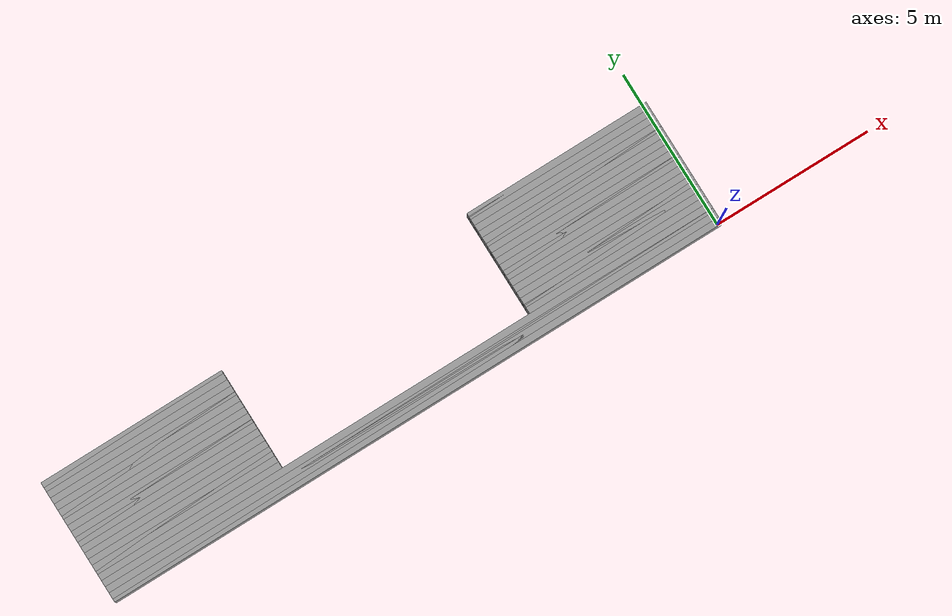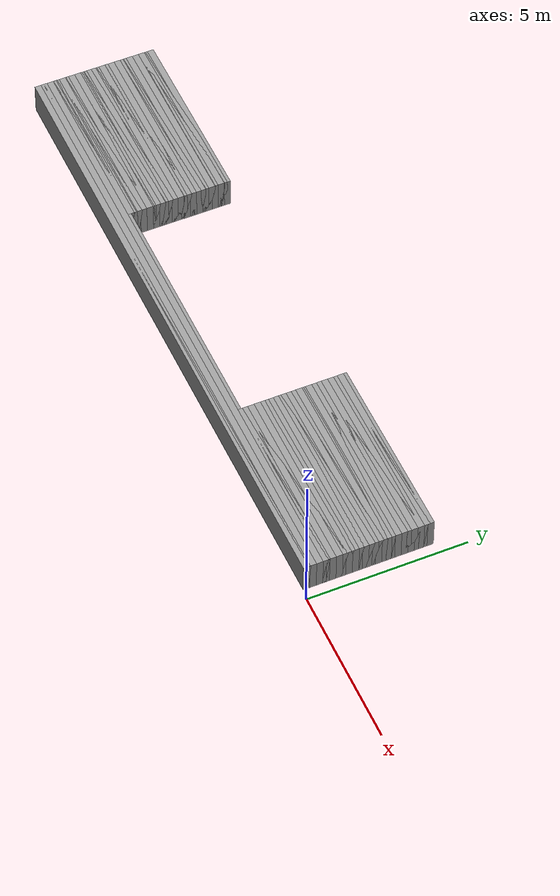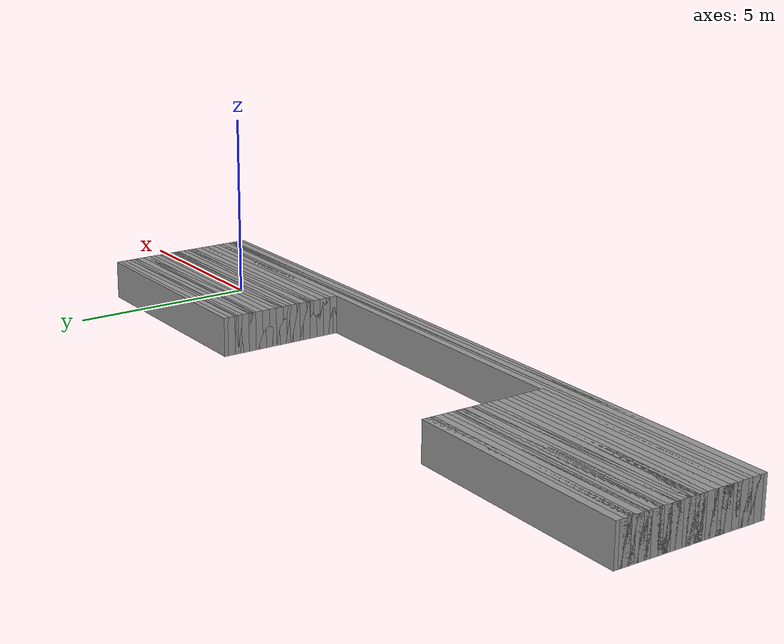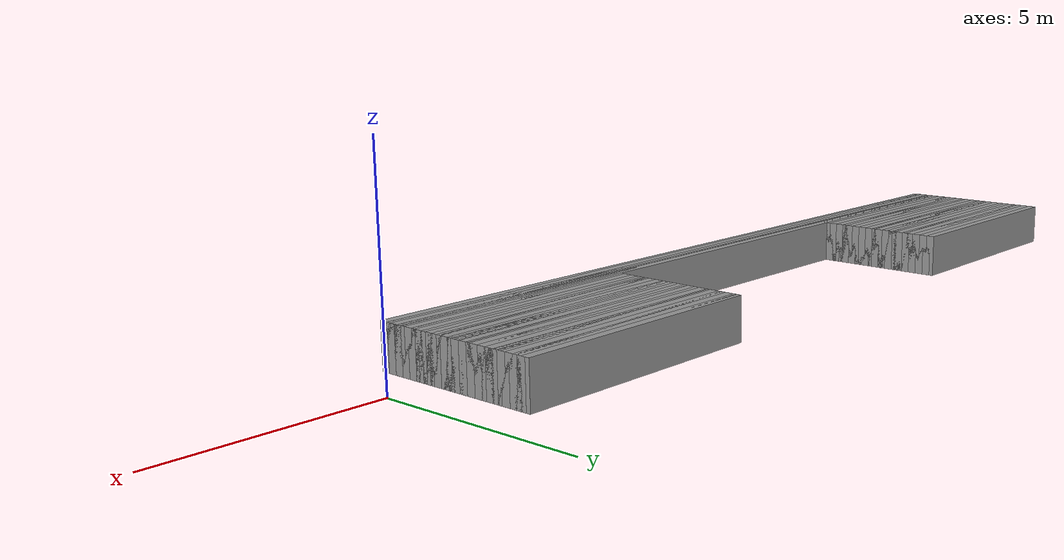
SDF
<sdf version="1.6">
 <world name="GridMap">
  <model name="GridMap">
   <link name="Wall_(99.5,0.0)">
    <collision name="Wall_(99.5,0.0)_Collision">
     <geometry><box><size>19.9 0.2 1.0</size></box></geometry>
     <pose>-9.95 0.0 0.5 0 -0 0</pose>
    </collision>
    <visual name="Wall_(99.5,0.0)_Visual">
     <geometry><box><size>19.9 0.2 1.0</size></box></geometry>
     <pose>-9.95 0.0 0.5 0 -0 0</pose>
     <material>
      <script><uri>file://media/materials/scripts/gazebo.material</uri><name>Gazebo/Grey</name></script>
      <ambient>1 1 1 1</ambient>
     </material>
     <meta><layer>0</layer></meta>
    </visual>
    <pose>0 0 0.5 0 -0 0</pose>
   </link>
   <link name="Wall_(99.5,1.0)">
    <collision name="Wall_(99.5,1.0)_Collision">
     <geometry><box><size>19.9 0.2 1.0</size></box></geometry>
     <pose>-9.95 0.1 0.5 0 -0 0</pose>
    </collision>
    <visual name="Wall_(99.5,1.0)_Visual">
     <geometry><box><size>19.9 0.2 1.0</size></box></geometry>
     <pose>-9.95 0.1 0.5 0 -0 0</pose>
     <material>
      <script><uri>file://media/materials/scripts/gazebo.material</uri><name>Gazebo/Grey</name></script>
      <ambient>1 1 1 1</ambient>
     </material>
     <meta><layer>0</layer></meta>
    </visual>
    <pose>0 0 0.5 0 -0 0</pose>
   </link>
   <link name="Wall_(99.5,2.0)">
    <collision name="Wall_(99.5,2.0)_Collision">
     <geometry><box><size>19.9 0.2 1.0</size></box></geometry>
     <pose>-9.95 0.2 0.5 0 -0 0</pose>
    </collision>
    <visual name="Wall_(99.5,2.0)_Visual">
     <geometry><box><size>19.9 0.2 1.0</size></box></geometry>
     <pose>-9.95 0.2 0.5 0 -0 0</pose>
     <material>
      <script><uri>file://media/materials/scripts/gazebo.material</uri><name>Gazebo/Grey</name></script>
      <ambient>1 1 1 1</ambient>
     </material>
     <meta><layer>0</layer></meta>
    </visual>
    <pose>0 0 0.5 0 -0 0</pose>
   </link>
   <link name="Wall_(99.5,3.0)">
    <collision name="Wall_(99.5,3.0)_Collision">
     <geometry><box><size>19.9 0.2 1.0</size></box></geometry>
     <pose>-9.95 0.3 0.5 0 -0 0</pose>
    </collision>
    <visual name="Wall_(99.5,3.0)_Visual">
     <geometry><box><size>19.9 0.2 1.0</size></box></geometry>
     <pose>-9.95 0.3 0.5 0 -0 0</pose>
     <material>
      <script><uri>file://media/materials/scripts/gazebo.material</uri><name>Gazebo/Grey</name></script>
      <ambient>1 1 1 1</ambient>
     </material>
     <meta><layer>0</layer></meta>
    </visual>
    <pose>0 0 0.5 0 -0 0</pose>
   </link>
   <link name="Wall_(99.5,4.0)">
    <collision name="Wall_(99.5,4.0)_Collision">
     <geometry><box><size>19.9 0.2 1.0</size></box></geometry>
     <pose>-9.95 0.4 0.5 0 -0 0</pose>
    </collision>
    <visual name="Wall_(99.5,4.0)_Visual">
     <geometry><box><size>19.9 0.2 1.0</size></box></geometry>
     <pose>-9.95 0.4 0.5 0 -0 0</pose>
     <material>
      <script><uri>file://media/materials/scripts/gazebo.material</uri><name>Gazebo/Grey</name></script>
      <ambient>1 1 1 1</ambient>
     </material>
     <meta><layer>0</layer></meta>
    </visual>
    <pose>0 0 0.5 0 -0 0</pose>
   </link>
   <link name="Wall_(99.5,5.0)">
    <collision name="Wall_(99.5,5.0)_Collision">
     <geometry><box><size>19.9 0.2 1.0</size></box></geometry>
     <pose>-9.95 0.5 0.5 0 -0 0</pose>
    </collision>
    <visual name="Wall_(99.5,5.0)_Visual">
     <geometry><box><size>19.9 0.2 1.0</size></box></geometry>
     <pose>-9.95 0.5 0.5 0 -0 0</pose>
     <material>
      <script><uri>file://media/materials/scripts/gazebo.material</uri><name>Gazebo/Grey</name></script>
      <ambient>1 1 1 1</ambient>
     </material>
     <meta><layer>0</layer></meta>
    </visual>
    <pose>0 0 0.5 0 -0 0</pose>
   </link>
   <link name="Wall_(29.5,6.0)">
    <collision name="Wall_(29.5,6.0)_Collision">
     <geometry><box><size>5.9 0.2 1.0</size></box></geometry>
     <pose>-2.95 0.6 0.5 0 -0 0</pose>
    </collision>
    <visual name="Wall_(29.5,6.0)_Visual">
     <geometry><box><size>5.9 0.2 1.0</size></box></geometry>
     <pose>-2.95 0.6 0.5 0 -0 0</pose>
     <material>
      <script><uri>file://media/materials/scripts/gazebo.material</uri><name>Gazebo/Grey</name></script>
      <ambient>1 1 1 1</ambient>
     </material>
     <meta><layer>0</layer></meta>
    </visual>
    <pose>0 0 0.5 0 -0 0</pose>
   </link>
   <link name="Wall_(169.5,6.0)">
    <collision name="Wall_(169.5,6.0)_Collision">
     <geometry><box><size>5.9 0.2 1.0</size></box></geometry>
     <pose>-16.95 0.6 0.5 0 -0 0</pose>
    </collision>
    <visual name="Wall_(169.5,6.0)_Visual">
     <geometry><box><size>5.9 0.2 1.0</size></box></geometry>
     <pose>-16.95 0.6 0.5 0 -0 0</pose>
     <material>
      <script><uri>file://media/materials/scripts/gazebo.material</uri><name>Gazebo/Grey</name></script>
      <ambient>1 1 1 1</ambient>
     </material>
     <meta><layer>0</layer></meta>
    </visual>
    <pose>0 0 0.5 0 -0 0</pose>
   </link>
   <link name="Wall_(29.5,7.0)">
    <collision name="Wall_(29.5,7.0)_Collision">
     <geometry><box><size>5.9 0.2 1.0</size></box></geometry>
     <pose>-2.95 0.7 0.5 0 -0 0</pose>
    </collision>
    <visual name="Wall_(29.5,7.0)_Visual">
     <geometry><box><size>5.9 0.2 1.0</size></box></geometry>
     <pose>-2.95 0.7 0.5 0 -0 0</pose>
     <material>
      <script><uri>file://media/materials/scripts/gazebo.material</uri><name>Gazebo/Grey</name></script>
      <ambient>1 1 1 1</ambient>
     </material>
     <meta><layer>0</layer></meta>
    </visual>
    <pose>0 0 0.5 0 -0 0</pose>
   </link>
   <link name="Wall_(169.5,7.0)">
    <collision name="Wall_(169.5,7.0)_Collision">
     <geometry><box><size>5.9 0.2 1.0</size></box></geometry>
     <pose>-16.95 0.7 0.5 0 -0 0</pose>
    </collision>
    <visual name="Wall_(169.5,7.0)_Visual">
     <geometry><box><size>5.9 0.2 1.0</size></box></geometry>
     <pose>-16.95 0.7 0.5 0 -0 0</pose>
     <material>
      <script><uri>file://media/materials/scripts/gazebo.material</uri><name>Gazebo/Grey</name></script>
      <ambient>1 1 1 1</ambient>
     </material>
     <meta><layer>0</layer></meta>
    </visual>
    <pose>0 0 0.5 0 -0 0</pose>
   </link>
   <link name="Wall_(29.5,8.0)">
    <collision name="Wall_(29.5,8.0)_Collision">
     <geometry><box><size>5.9 0.2 1.0</size></box></geometry>
     <pose>-2.95 0.8 0.5 0 -0 0</pose>
    </collision>
    <visual name="Wall_(29.5,8.0)_Visual">
     <geometry><box><size>5.9 0.2 1.0</size></box></geometry>
     <pose>-2.95 0.8 0.5 0 -0 0</pose>
     <material>
      <script><uri>file://media/materials/scripts/gazebo.material</uri><name>Gazebo/Grey</name></script>
      <ambient>1 1 1 1</ambient>
     </material>
     <meta><layer>0</layer></meta>
    </visual>
    <pose>0 0 0.5 0 -0 0</pose>
   </link>
   <link name="Wall_(169.5,8.0)">
    <collision name="Wall_(169.5,8.0)_Collision">
     <geometry><box><size>5.9 0.2 1.0</size></box></geometry>
     <pose>-16.95 0.8 0.5 0 -0 0</pose>
    </collision>
    <visual name="Wall_(169.5,8.0)_Visual">
     <geometry><box><size>5.9 0.2 1.0</size></box></geometry>
     <pose>-16.95 0.8 0.5 0 -0 0</pose>
     <material>
      <script><uri>file://media/materials/scripts/gazebo.material</uri><name>Gazebo/Grey</name></script>
      <ambient>1 1 1 1</ambient>
     </material>
     <meta><layer>0</layer></meta>
    </visual>
    <pose>0 0 0.5 0 -0 0</pose>
   </link>
   <link name="Wall_(29.5,9.0)">
    <collision name="Wall_(29.5,9.0)_Collision">
     <geometry><box><size>5.9 0.2 1.0</size></box></geometry>
     <pose>-2.95 0.9 0.5 0 -0 0</pose>
    </collision>
    <visual name="Wall_(29.5,9.0)_Visual">
     <geometry><box><size>5.9 0.2 1.0</size></box></geometry>
     <pose>-2.95 0.9 0.5 0 -0 0</pose>
     <material>
      <script><uri>file://media/materials/scripts/gazebo.material</uri><name>Gazebo/Grey</name></script>
      <ambient>1 1 1 1</ambient>
     </material>
     <meta><layer>0</layer></meta>
    </visual>
    <pose>0 0 0.5 0 -0 0</pose>
   </link>
   <link name="Wall_(169.5,9.0)">
    <collision name="Wall_(169.5,9.0)_Collision">
     <geometry><box><size>5.9 0.2 1.0</size></box></geometry>
     <pose>-16.95 0.9 0.5 0 -0 0</pose>
    </collision>
    <visual name="Wall_(169.5,9.0)_Visual">
     <geometry><box><size>5.9 0.2 1.0</size></box></geometry>
     <pose>-16.95 0.9 0.5 0 -0 0</pose>
     <material>
      <script><uri>file://media/materials/scripts/gazebo.material</uri><name>Gazebo/Grey</name></script>
      <ambient>1 1 1 1</ambient>
     </material>
     <meta><layer>0</layer></meta>
    </visual>
    <pose>0 0 0.5 0 -0 0</pose>
   </link>
   <link name="Wall_(29.5,10.0)">
    <collision name="Wall_(29.5,10.0)_Collision">
     <geometry><box><size>5.9 0.2 1.0</size></box></geometry>
     <pose>-2.95 1.0 0.5 0 -0 0</pose>
    </collision>
    <visual name="Wall_(29.5,10.0)_Visual">
     <geometry><box><size>5.9 0.2 1.0</size></box></geometry>
     <pose>-2.95 1.0 0.5 0 -0 0</pose>
     <material>
      <script><uri>file://media/materials/scripts/gazebo.material</uri><name>Gazebo/Grey</name></script>
      <ambient>1 1 1 1</ambient>
     </material>
     <meta><layer>0</layer></meta>
    </visual>
    <pose>0 0 0.5 0 -0 0</pose>
   </link>
   <link name="Wall_(169.5,10.0)">
    <collision name="Wall_(169.5,10.0)_Collision">
     <geometry><box><size>5.9 0.2 1.0</size></box></geometry>
     <pose>-16.95 1.0 0.5 0 -0 0</pose>
    </collision>
    <visual name="Wall_(169.5,10.0)_Visual">
     <geometry><box><size>5.9 0.2 1.0</size></box></geometry>
     <pose>-16.95 1.0 0.5 0 -0 0</pose>
     <material>
      <script><uri>file://media/materials/scripts/gazebo.material</uri><name>Gazebo/Grey</name></script>
      <ambient>1 1 1 1</ambient>
     </material>
     <meta><layer>0</layer></meta>
    </visual>
    <pose>0 0 0.5 0 -0 0</pose>
   </link>
   <link name="Wall_(29.5,11.0)">
    <collision name="Wall_(29.5,11.0)_Collision">
     <geometry><box><size>5.9 0.2 1.0</size></box></geometry>
     <pose>-2.95 1.1 0.5 0 -0 0</pose>
    </collision>
    <visual name="Wall_(29.5,11.0)_Visual">
     <geometry><box><size>5.9 0.2 1.0</size></box></geometry>
     <pose>-2.95 1.1 0.5 0 -0 0</pose>
     <material>
      <script><uri>file://media/materials/scripts/gazebo.material</uri><name>Gazebo/Grey</name></script>
      <ambient>1 1 1 1</ambient>
     </material>
     <meta><layer>0</layer></meta>
    </visual>
    <pose>0 0 0.5 0 -0 0</pose>
   </link>
   <link name="Wall_(169.5,11.0)">
    <collision name="Wall_(169.5,11.0)_Collision">
     <geometry><box><size>5.9 0.2 1.0</size></box></geometry>
     <pose>-16.95 1.1 0.5 0 -0 0</pose>
    </collision>
    <visual name="Wall_(169.5,11.0)_Visual">
     <geometry><box><size>5.9 0.2 1.0</size></box></geometry>
     <pose>-16.95 1.1 0.5 0 -0 0</pose>
     <material>
      <script><uri>file://media/materials/scripts/gazebo.material</uri><name>Gazebo/Grey</name></script>
      <ambient>1 1 1 1</ambient>
     </material>
     <meta><layer>0</layer></meta>
    </visual>
    <pose>0 0 0.5 0 -0 0</pose>
   </link>
   <link name="Wall_(29.5,12.0)">
    <collision name="Wall_(29.5,12.0)_Collision">
     <geometry><box><size>5.9 0.2 1.0</size></box></geometry>
     <pose>-2.95 1.2 0.5 0 -0 0</pose>
    </collision>
    <visual name="Wall_(29.5,12.0)_Visual">
     <geometry><box><size>5.9 0.2 1.0</size></box></geometry>
     <pose>-2.95 1.2 0.5 0 -0 0</pose>
     <material>
      <script><uri>file://media/materials/scripts/gazebo.material</uri><name>Gazebo/Grey</name></script>
      <ambient>1 1 1 1</ambient>
     </material>
     <meta><layer>0</layer></meta>
    </visual>
    <pose>0 0 0.5 0 -0 0</pose>
   </link>
   <link name="Wall_(169.5,12.0)">
    <collision name="Wall_(169.5,12.0)_Collision">
     <geometry><box><size>5.9 0.2 1.0</size></box></geometry>
     <pose>-16.95 1.2 0.5 0 -0 0</pose>
    </collision>
    <visual name="Wall_(169.5,12.0)_Visual">
     <geometry><box><size>5.9 0.2 1.0</size></box></geometry>
     <pose>-16.95 1.2 0.5 0 -0 0</pose>
     <material>
      <script><uri>file://media/materials/scripts/gazebo.material</uri><name>Gazebo/Grey</name></script>
      <ambient>1 1 1 1</ambient>
     </material>
     <meta><layer>0</layer></meta>
    </visual>
    <pose>0 0 0.5 0 -0 0</pose>
   </link>
   <link name="Wall_(29.5,13.0)">
    <collision name="Wall_(29.5,13.0)_Collision">
     <geometry><box><size>5.9 0.2 1.0</size></box></geometry>
     <pose>-2.95 1.3 0.5 0 -0 0</pose>
    </collision>
    <visual name="Wall_(29.5,13.0)_Visual">
     <geometry><box><size>5.9 0.2 1.0</size></box></geometry>
     <pose>-2.95 1.3 0.5 0 -0 0</pose>
     <material>
      <script><uri>file://media/materials/scripts/gazebo.material</uri><name>Gazebo/Grey</name></script>
      <ambient>1 1 1 1</ambient>
     </material>
     <meta><layer>0</layer></meta>
    </visual>
    <pose>0 0 0.5 0 -0 0</pose>
   </link>
   <link name="Wall_(169.5,13.0)">
    <collision name="Wall_(169.5,13.0)_Collision">
     <geometry><box><size>5.9 0.2 1.0</size></box></geometry>
     <pose>-16.95 1.3 0.5 0 -0 0</pose>
    </collision>
    <visual name="Wall_(169.5,13.0)_Visual">
     <geometry><box><size>5.9 0.2 1.0</size></box></geometry>
     <pose>-16.95 1.3 0.5 0 -0 0</pose>
     <material>
      <script><uri>file://media/materials/scripts/gazebo.material</uri><name>Gazebo/Grey</name></script>
      <ambient>1 1 1 1</ambient>
     </material>
     <meta><layer>0</layer></meta>
    </visual>
    <pose>0 0 0.5 0 -0 0</pose>
   </link>
   <link name="Wall_(29.5,14.0)">
    <collision name="Wall_(29.5,14.0)_Collision">
     <geometry><box><size>5.9 0.2 1.0</size></box></geometry>
     <pose>-2.95 1.4 0.5 0 -0 0</pose>
    </collision>
    <visual name="Wall_(29.5,14.0)_Visual">
     <geometry><box><size>5.9 0.2 1.0</size></box></geometry>
     <pose>-2.95 1.4 0.5 0 -0 0</pose>
     <material>
      <script><uri>file://media/materials/scripts/gazebo.material</uri><name>Gazebo/Grey</name></script>
      <ambient>1 1 1 1</ambient>
     </material>
     <meta><layer>0</layer></meta>
    </visual>
    <pose>0 0 0.5 0 -0 0</pose>
   </link>
   <link name="Wall_(169.5,14.0)">
    <collision name="Wall_(169.5,14.0)_Collision">
     <geometry><box><size>5.9 0.2 1.0</size></box></geometry>
     <pose>-16.95 1.4 0.5 0 -0 0</pose>
    </collision>
    <visual name="Wall_(169.5,14.0)_Visual">
     <geometry><box><size>5.9 0.2 1.0</size></box></geometry>
     <pose>-16.95 1.4 0.5 0 -0 0</pose>
     <material>
      <script><uri>file://media/materials/scripts/gazebo.material</uri><name>Gazebo/Grey</name></script>
      <ambient>1 1 1 1</ambient>
     </material>
     <meta><layer>0</layer></meta>
    </visual>
    <pose>0 0 0.5 0 -0 0</pose>
   </link>
   <link name="Wall_(29.5,15.0)">
    <collision name="Wall_(29.5,15.0)_Collision">
     <geometry><box><size>5.9 0.2 1.0</size></box></geometry>
     <pose>-2.95 1.5 0.5 0 -0 0</pose>
    </collision>
    <visual name="Wall_(29.5,15.0)_Visual">
     <geometry><box><size>5.9 0.2 1.0</size></box></geometry>
     <pose>-2.95 1.5 0.5 0 -0 0</pose>
     <material>
      <script><uri>file://media/materials/scripts/gazebo.material</uri><name>Gazebo/Grey</name></script>
      <ambient>1 1 1 1</ambient>
     </material>
     <meta><layer>0</layer></meta>
    </visual>
    <pose>0 0 0.5 0 -0 0</pose>
   </link>
   <link name="Wall_(169.5,15.0)">
    <collision name="Wall_(169.5,15.0)_Collision">
     <geometry><box><size>5.9 0.2 1.0</size></box></geometry>
     <pose>-16.95 1.5 0.5 0 -0 0</pose>
    </collision>
    <visual name="Wall_(169.5,15.0)_Visual">
     <geometry><box><size>5.9 0.2 1.0</size></box></geometry>
     <pose>-16.95 1.5 0.5 0 -0 0</pose>
     <material>
      <script><uri>file://media/materials/scripts/gazebo.material</uri><name>Gazebo/Grey</name></script>
      <ambient>1 1 1 1</ambient>
     </material>
     <meta><layer>0</layer></meta>
    </visual>
    <pose>0 0 0.5 0 -0 0</pose>
   </link>
   <link name="Wall_(29.5,16.0)">
    <collision name="Wall_(29.5,16.0)_Collision">
     <geometry><box><size>5.9 0.2 1.0</size></box></geometry>
     <pose>-2.95 1.6 0.5 0 -0 0</pose>
    </collision>
    <visual name="Wall_(29.5,16.0)_Visual">
     <geometry><box><size>5.9 0.2 1.0</size></box></geometry>
     <pose>-2.95 1.6 0.5 0 -0 0</pose>
     <material>
      <script><uri>file://media/materials/scripts/gazebo.material</uri><name>Gazebo/Grey</name></script>
      <ambient>1 1 1 1</ambient>
     </material>
     <meta><layer>0</layer></meta>
    </visual>
    <pose>0 0 0.5 0 -0 0</pose>
   </link>
   <link name="Wall_(169.5,16.0)">
    <collision name="Wall_(169.5,16.0)_Collision">
     <geometry><box><size>5.9 0.2 1.0</size></box></geometry>
     <pose>-16.95 1.6 0.5 0 -0 0</pose>
    </collision>
    <visual name="Wall_(169.5,16.0)_Visual">
     <geometry><box><size>5.9 0.2 1.0</size></box></geometry>
     <pose>-16.95 1.6 0.5 0 -0 0</pose>
     <material>
      <script><uri>file://media/materials/scripts/gazebo.material</uri><name>Gazebo/Grey</name></script>
      <ambient>1 1 1 1</ambient>
     </material>
     <meta><layer>0</layer></meta>
    </visual>
    <pose>0 0 0.5 0 -0 0</pose>
   </link>
   <link name="Wall_(29.5,17.0)">
    <collision name="Wall_(29.5,17.0)_Collision">
     <geometry><box><size>5.9 0.2 1.0</size></box></geometry>
     <pose>-2.95 1.7 0.5 0 -0 0</pose>
    </collision>
    <visual name="Wall_(29.5,17.0)_Visual">
     <geometry><box><size>5.9 0.2 1.0</size></box></geometry>
     <pose>-2.95 1.7 0.5 0 -0 0</pose>
     <material>
      <script><uri>file://media/materials/scripts/gazebo.material</uri><name>Gazebo/Grey</name></script>
      <ambient>1 1 1 1</ambient>
     </material>
     <meta><layer>0</layer></meta>
    </visual>
    <pose>0 0 0.5 0 -0 0</pose>
   </link>
   <link name="Wall_(169.5,17.0)">
    <collision name="Wall_(169.5,17.0)_Collision">
     <geometry><box><size>5.9 0.2 1.0</size></box></geometry>
     <pose>-16.95 1.7 0.5 0 -0 0</pose>
    </collision>
    <visual name="Wall_(169.5,17.0)_Visual">
     <geometry><box><size>5.9 0.2 1.0</size></box></geometry>
     <pose>-16.95 1.7 0.5 0 -0 0</pose>
     <material>
      <script><uri>file://media/materials/scripts/gazebo.material</uri><name>Gazebo/Grey</name></script>
      <ambient>1 1 1 1</ambient>
     </material>
     <meta><layer>0</layer></meta>
    </visual>
    <pose>0 0 0.5 0 -0 0</pose>
   </link>
   <link name="Wall_(29.5,18.0)">
    <collision name="Wall_(29.5,18.0)_Collision">
     <geometry><box><size>5.9 0.2 1.0</size></box></geometry>
     <pose>-2.95 1.8 0.5 0 -0 0</pose>
    </collision>
    <visual name="Wall_(29.5,18.0)_Visual">
     <geometry><box><size>5.9 0.2 1.0</size></box></geometry>
     <pose>-2.95 1.8 0.5 0 -0 0</pose>
     <material>
      <script><uri>file://media/materials/scripts/gazebo.material</uri><name>Gazebo/Grey</name></script>
      <ambient>1 1 1 1</ambient>
     </material>
     <meta><layer>0</layer></meta>
    </visual>
    <pose>0 0 0.5 0 -0 0</pose>
   </link>
   <link name="Wall_(169.5,18.0)">
    <collision name="Wall_(169.5,18.0)_Collision">
     <geometry><box><size>5.9 0.2 1.0</size></box></geometry>
     <pose>-16.95 1.8 0.5 0 -0 0</pose>
    </collision>
    <visual name="Wall_(169.5,18.0)_Visual">
     <geometry><box><size>5.9 0.2 1.0</size></box></geometry>
     <pose>-16.95 1.8 0.5 0 -0 0</pose>
     <material>
      <script><uri>file://media/materials/scripts/gazebo.material</uri><name>Gazebo/Grey</name></script>
      <ambient>1 1 1 1</ambient>
     </material>
     <meta><layer>0</layer></meta>
    </visual>
    <pose>0 0 0.5 0 -0 0</pose>
   </link>
   <link name="Wall_(29.5,19.0)">
    <collision name="Wall_(29.5,19.0)_Collision">
     <geometry><box><size>5.9 0.2 1.0</size></box></geometry>
     <pose>-2.95 1.9 0.5 0 -0 0</pose>
    </collision>
    <visual name="Wall_(29.5,19.0)_Visual">
     <geometry><box><size>5.9 0.2 1.0</size></box></geometry>
     <pose>-2.95 1.9 0.5 0 -0 0</pose>
     <material>
      <script><uri>file://media/materials/scripts/gazebo.material</uri><name>Gazebo/Grey</name></script>
      <ambient>1 1 1 1</ambient>
     </material>
     <meta><layer>0</layer></meta>
    </visual>
    <pose>0 0 0.5 0 -0 0</pose>
   </link>
   <link name="Wall_(169.5,19.0)">
    <collision name="Wall_(169.5,19.0)_Collision">
     <geometry><box><size>5.9 0.2 1.0</size></box></geometry>
     <pose>-16.95 1.9 0.5 0 -0 0</pose>
    </collision>
    <visual name="Wall_(169.5,19.0)_Visual">
     <geometry><box><size>5.9 0.2 1.0</size></box></geometry>
     <pose>-16.95 1.9 0.5 0 -0 0</pose>
     <material>
      <script><uri>file://media/materials/scripts/gazebo.material</uri><name>Gazebo/Grey</name></script>
      <ambient>1 1 1 1</ambient>
     </material>
     <meta><layer>0</layer></meta>
    </visual>
    <pose>0 0 0.5 0 -0 0</pose>
   </link>
   <link name="Wall_(29.5,20.0)">
    <collision name="Wall_(29.5,20.0)_Collision">
     <geometry><box><size>5.9 0.2 1.0</size></box></geometry>
     <pose>-2.95 2.0 0.5 0 -0 0</pose>
    </collision>
    <visual name="Wall_(29.5,20.0)_Visual">
     <geometry><box><size>5.9 0.2 1.0</size></box></geometry>
     <pose>-2.95 2.0 0.5 0 -0 0</pose>
     <material>
      <script><uri>file://media/materials/scripts/gazebo.material</uri><name>Gazebo/Grey</name></script>
      <ambient>1 1 1 1</ambient>
     </material>
     <meta><layer>0</layer></meta>
    </visual>
    <pose>0 0 0.5 0 -0 0</pose>
   </link>
   <link name="Wall_(169.5,20.0)">
    <collision name="Wall_(169.5,20.0)_Collision">
     <geometry><box><size>5.9 0.2 1.0</size></box></geometry>
     <pose>-16.95 2.0 0.5 0 -0 0</pose>
    </collision>
    <visual name="Wall_(169.5,20.0)_Visual">
     <geometry><box><size>5.9 0.2 1.0</size></box></geometry>
     <pose>-16.95 2.0 0.5 0 -0 0</pose>
     <material>
      <script><uri>file://media/materials/scripts/gazebo.material</uri><name>Gazebo/Grey</name></script>
      <ambient>1 1 1 1</ambient>
     </material>
     <meta><layer>0</layer></meta>
    </visual>
    <pose>0 0 0.5 0 -0 0</pose>
   </link>
   <link name="Wall_(29.5,21.0)">
    <collision name="Wall_(29.5,21.0)_Collision">
     <geometry><box><size>5.9 0.2 1.0</size></box></geometry>
     <pose>-2.95 2.1 0.5 0 -0 0</pose>
    </collision>
    <visual name="Wall_(29.5,21.0)_Visual">
     <geometry><box><size>5.9 0.2 1.0</size></box></geometry>
     <pose>-2.95 2.1 0.5 0 -0 0</pose>
     <material>
      <script><uri>file://media/materials/scripts/gazebo.material</uri><name>Gazebo/Grey</name></script>
      <ambient>1 1 1 1</ambient>
     </material>
     <meta><layer>0</layer></meta>
    </visual>
    <pose>0 0 0.5 0 -0 0</pose>
   </link>
   <link name="Wall_(169.5,21.0)">
    <collision name="Wall_(169.5,21.0)_Collision">
     <geometry><box><size>5.9 0.2 1.0</size></box></geometry>
     <pose>-16.95 2.1 0.5 0 -0 0</pose>
    </collision>
    <visual name="Wall_(169.5,21.0)_Visual">
     <geometry><box><size>5.9 0.2 1.0</size></box></geometry>
     <pose>-16.95 2.1 0.5 0 -0 0</pose>
     <material>
      <script><uri>file://media/materials/scripts/gazebo.material</uri><name>Gazebo/Grey</name></script>
      <ambient>1 1 1 1</ambient>
     </material>
     <meta><layer>0</layer></meta>
    </visual>
    <pose>0 0 0.5 0 -0 0</pose>
   </link>
   <link name="Wall_(29.5,22.0)">
    <collision name="Wall_(29.5,22.0)_Collision">
     <geometry><box><size>5.9 0.2 1.0</size></box></geometry>
     <pose>-2.95 2.2 0.5 0 -0 0</pose>
    </collision>
    <visual name="Wall_(29.5,22.0)_Visual">
     <geometry><box><size>5.9 0.2 1.0</size></box></geometry>
     <pose>-2.95 2.2 0.5 0 -0 0</pose>
     <material>
      <script><uri>file://media/materials/scripts/gazebo.material</uri><name>Gazebo/Grey</name></script>
      <ambient>1 1 1 1</ambient>
     </material>
     <meta><layer>0</layer></meta>
    </visual>
    <pose>0 0 0.5 0 -0 0</pose>
   </link>
   <link name="Wall_(169.5,22.0)">
    <collision name="Wall_(169.5,22.0)_Collision">
     <geometry><box><size>5.9 0.2 1.0</size></box></geometry>
     <pose>-16.95 2.2 0.5 0 -0 0</pose>
    </collision>
    <visual name="Wall_(169.5,22.0)_Visual">
     <geometry><box><size>5.9 0.2 1.0</size></box></geometry>
     <pose>-16.95 2.2 0.5 0 -0 0</pose>
     <material>
      <script><uri>file://media/materials/scripts/gazebo.material</uri><name>Gazebo/Grey</name></script>
      <ambient>1 1 1 1</ambient>
     </material>
     <meta><layer>0</layer></meta>
    </visual>
    <pose>0 0 0.5 0 -0 0</pose>
   </link>
   <link name="Wall_(29.5,23.0)">
    <collision name="Wall_(29.5,23.0)_Collision">
     <geometry><box><size>5.9 0.2 1.0</size></box></geometry>
     <pose>-2.95 2.3 0.5 0 -0 0</pose>
    </collision>
    <visual name="Wall_(29.5,23.0)_Visual">
     <geometry><box><size>5.9 0.2 1.0</size></box></geometry>
     <pose>-2.95 2.3 0.5 0 -0 0</pose>
     <material>
      <script><uri>file://media/materials/scripts/gazebo.material</uri><name>Gazebo/Grey</name></script>
      <ambient>1 1 1 1</ambient>
     </material>
     <meta><layer>0</layer></meta>
    </visual>
    <pose>0 0 0.5 0 -0 0</pose>
   </link>
   <link name="Wall_(169.5,23.0)">
    <collision name="Wall_(169.5,23.0)_Collision">
     <geometry><box><size>5.9 0.2 1.0</size></box></geometry>
     <pose>-16.95 2.3 0.5 0 -0 0</pose>
    </collision>
    <visual name="Wall_(169.5,23.0)_Visual">
     <geometry><box><size>5.9 0.2 1.0</size></box></geometry>
     <pose>-16.95 2.3 0.5 0 -0 0</pose>
     <material>
      <script><uri>file://media/materials/scripts/gazebo.material</uri><name>Gazebo/Grey</name></script>
      <ambient>1 1 1 1</ambient>
     </material>
     <meta><layer>0</layer></meta>
    </visual>
    <pose>0 0 0.5 0 -0 0</pose>
   </link>
   <link name="Wall_(29.5,24.0)">
    <collision name="Wall_(29.5,24.0)_Collision">
     <geometry><box><size>5.9 0.2 1.0</size></box></geometry>
     <pose>-2.95 2.4 0.5 0 -0 0</pose>
    </collision>
    <visual name="Wall_(29.5,24.0)_Visual">
     <geometry><box><size>5.9 0.2 1.0</size></box></geometry>
     <pose>-2.95 2.4 0.5 0 -0 0</pose>
     <material>
      <script><uri>file://media/materials/scripts/gazebo.material</uri><name>Gazebo/Grey</name></script>
      <ambient>1 1 1 1</ambient>
     </material>
     <meta><layer>0</layer></meta>
    </visual>
    <pose>0 0 0.5 0 -0 0</pose>
   </link>
   <link name="Wall_(169.5,24.0)">
    <collision name="Wall_(169.5,24.0)_Collision">
     <geometry><box><size>5.9 0.2 1.0</size></box></geometry>
     <pose>-16.95 2.4 0.5 0 -0 0</pose>
    </collision>
    <visual name="Wall_(169.5,24.0)_Visual">
     <geometry><box><size>5.9 0.2 1.0</size></box></geometry>
     <pose>-16.95 2.4 0.5 0 -0 0</pose>
     <material>
      <script><uri>file://media/materials/scripts/gazebo.material</uri><name>Gazebo/Grey</name></script>
      <ambient>1 1 1 1</ambient>
     </material>
     <meta><layer>0</layer></meta>
    </visual>
    <pose>0 0 0.5 0 -0 0</pose>
   </link>
   <link name="Wall_(29.5,25.0)">
    <collision name="Wall_(29.5,25.0)_Collision">
     <geometry><box><size>5.9 0.2 1.0</size></box></geometry>
     <pose>-2.95 2.5 0.5 0 -0 0</pose>
    </collision>
    <visual name="Wall_(29.5,25.0)_Visual">
     <geometry><box><size>5.9 0.2 1.0</size></box></geometry>
     <pose>-2.95 2.5 0.5 0 -0 0</pose>
     <material>
      <script><uri>file://media/materials/scripts/gazebo.material</uri><name>Gazebo/Grey</name></script>
      <ambient>1 1 1 1</ambient>
     </material>
     <meta><layer>0</layer></meta>
    </visual>
    <pose>0 0 0.5 0 -0 0</pose>
   </link>
   <link name="Wall_(169.5,25.0)">
    <collision name="Wall_(169.5,25.0)_Collision">
     <geometry><box><size>5.9 0.2 1.0</size></box></geometry>
     <pose>-16.95 2.5 0.5 0 -0 0</pose>
    </collision>
    <visual name="Wall_(169.5,25.0)_Visual">
     <geometry><box><size>5.9 0.2 1.0</size></box></geometry>
     <pose>-16.95 2.5 0.5 0 -0 0</pose>
     <material>
      <script><uri>file://media/materials/scripts/gazebo.material</uri><name>Gazebo/Grey</name></script>
      <ambient>1 1 1 1</ambient>
     </material>
     <meta><layer>0</layer></meta>
    </visual>
    <pose>0 0 0.5 0 -0 0</pose>
   </link>
   <link name="Wall_(29.5,26.0)">
    <collision name="Wall_(29.5,26.0)_Collision">
     <geometry><box><size>5.9 0.2 1.0</size></box></geometry>
     <pose>-2.95 2.6 0.5 0 -0 0</pose>
    </collision>
    <visual name="Wall_(29.5,26.0)_Visual">
     <geometry><box><size>5.9 0.2 1.0</size></box></geometry>
     <pose>-2.95 2.6 0.5 0 -0 0</pose>
     <material>
      <script><uri>file://media/materials/scripts/gazebo.material</uri><name>Gazebo/Grey</name></script>
      <ambient>1 1 1 1</ambient>
     </material>
     <meta><layer>0</layer></meta>
    </visual>
    <pose>0 0 0.5 0 -0 0</pose>
   </link>
   <link name="Wall_(169.5,26.0)">
    <collision name="Wall_(169.5,26.0)_Collision">
     <geometry><box><size>5.9 0.2 1.0</size></box></geometry>
     <pose>-16.95 2.6 0.5 0 -0 0</pose>
    </collision>
    <visual name="Wall_(169.5,26.0)_Visual">
     <geometry><box><size>5.9 0.2 1.0</size></box></geometry>
     <pose>-16.95 2.6 0.5 0 -0 0</pose>
     <material>
      <script><uri>file://media/materials/scripts/gazebo.material</uri><name>Gazebo/Grey</name></script>
      <ambient>1 1 1 1</ambient>
     </material>
     <meta><layer>0</layer></meta>
    </visual>
    <pose>0 0 0.5 0 -0 0</pose>
   </link>
   <link name="Wall_(29.5,27.0)">
    <collision name="Wall_(29.5,27.0)_Collision">
     <geometry><box><size>5.9 0.2 1.0</size></box></geometry>
     <pose>-2.95 2.7 0.5 0 -0 0</pose>
    </collision>
    <visual name="Wall_(29.5,27.0)_Visual">
     <geometry><box><size>5.9 0.2 1.0</size></box></geometry>
     <pose>-2.95 2.7 0.5 0 -0 0</pose>
     <material>
      <script><uri>file://media/materials/scripts/gazebo.material</uri><name>Gazebo/Grey</name></script>
      <ambient>1 1 1 1</ambient>
     </material>
     <meta><layer>0</layer></meta>
    </visual>
    <pose>0 0 0.5 0 -0 0</pose>
   </link>
   <link name="Wall_(169.5,27.0)">
    <collision name="Wall_(169.5,27.0)_Collision">
     <geometry><box><size>5.9 0.2 1.0</size></box></geometry>
     <pose>-16.95 2.7 0.5 0 -0 0</pose>
    </collision>
    <visual name="Wall_(169.5,27.0)_Visual">
     <geometry><box><size>5.9 0.2 1.0</size></box></geometry>
     <pose>-16.95 2.7 0.5 0 -0 0</pose>
     <material>
      <script><uri>file://media/materials/scripts/gazebo.material</uri><name>Gazebo/Grey</name></script>
      <ambient>1 1 1 1</ambient>
     </material>
     <meta><layer>0</layer></meta>
    </visual>
    <pose>0 0 0.5 0 -0 0</pose>
   </link>
   <link name="Wall_(29.5,28.0)">
    <collision name="Wall_(29.5,28.0)_Collision">
     <geometry><box><size>5.9 0.2 1.0</size></box></geometry>
     <pose>-2.95 2.8 0.5 0 -0 0</pose>
    </collision>
    <visual name="Wall_(29.5,28.0)_Visual">
     <geometry><box><size>5.9 0.2 1.0</size></box></geometry>
     <pose>-2.95 2.8 0.5 0 -0 0</pose>
     <material>
      <script><uri>file://media/materials/scripts/gazebo.material</uri><name>Gazebo/Grey</name></script>
      <ambient>1 1 1 1</ambient>
     </material>
     <meta><layer>0</layer></meta>
    </visual>
    <pose>0 0 0.5 0 -0 0</pose>
   </link>
   <link name="Wall_(169.5,28.0)">
    <collision name="Wall_(169.5,28.0)_Collision">
     <geometry><box><size>5.9 0.2 1.0</size></box></geometry>
     <pose>-16.95 2.8 0.5 0 -0 0</pose>
    </collision>
    <visual name="Wall_(169.5,28.0)_Visual">
     <geometry><box><size>5.9 0.2 1.0</size></box></geometry>
     <pose>-16.95 2.8 0.5 0 -0 0</pose>
     <material>
      <script><uri>file://media/materials/scripts/gazebo.material</uri><name>Gazebo/Grey</name></script>
      <ambient>1 1 1 1</ambient>
     </material>
     <meta><layer>0</layer></meta>
    </visual>
    <pose>0 0 0.5 0 -0 0</pose>
   </link>
   <link name="Wall_(29.5,29.0)">
    <collision name="Wall_(29.5,29.0)_Collision">
     <geometry><box><size>5.9 0.2 1.0</size></box></geometry>
     <pose>-2.95 2.9 0.5 0 -0 0</pose>
    </collision>
    <visual name="Wall_(29.5,29.0)_Visual">
     <geometry><box><size>5.9 0.2 1.0</size></box></geometry>
     <pose>-2.95 2.9 0.5 0 -0 0</pose>
     <material>
      <script><uri>file://media/materials/scripts/gazebo.material</uri><name>Gazebo/Grey</name></script>
      <ambient>1 1 1 1</ambient>
     </material>
     <meta><layer>0</layer></meta>
    </visual>
    <pose>0 0 0.5 0 -0 0</pose>
   </link>
   <link name="Wall_(169.5,29.0)">
    <collision name="Wall_(169.5,29.0)_Collision">
     <geometry><box><size>5.9 0.2 1.0</size></box></geometry>
     <pose>-16.95 2.9 0.5 0 -0 0</pose>
    </collision>
    <visual name="Wall_(169.5,29.0)_Visual">
     <geometry><box><size>5.9 0.2 1.0</size></box></geometry>
     <pose>-16.95 2.9 0.5 0 -0 0</pose>
     <material>
      <script><uri>file://media/materials/scripts/gazebo.material</uri><name>Gazebo/Grey</name></script>
      <ambient>1 1 1 1</ambient>
     </material>
     <meta><layer>0</layer></meta>
    </visual>
    <pose>0 0 0.5 0 -0 0</pose>
   </link>
   <link name="Wall_(29.5,30.0)">
    <collision name="Wall_(29.5,30.0)_Collision">
     <geometry><box><size>5.9 0.2 1.0</size></box></geometry>
     <pose>-2.95 3.0 0.5 0 -0 0</pose>
    </collision>
    <visual name="Wall_(29.5,30.0)_Visual">
     <geometry><box><size>5.9 0.2 1.0</size></box></geometry>
     <pose>-2.95 3.0 0.5 0 -0 0</pose>
     <material>
      <script><uri>file://media/materials/scripts/gazebo.material</uri><name>Gazebo/Grey</name></script>
      <ambient>1 1 1 1</ambient>
     </material>
     <meta><layer>0</layer></meta>
    </visual>
    <pose>0 0 0.5 0 -0 0</pose>
   </link>
   <link name="Wall_(169.5,30.0)">
    <collision name="Wall_(169.5,30.0)_Collision">
     <geometry><box><size>5.9 0.2 1.0</size></box></geometry>
     <pose>-16.95 3.0 0.5 0 -0 0</pose>
    </collision>
    <visual name="Wall_(169.5,30.0)_Visual">
     <geometry><box><size>5.9 0.2 1.0</size></box></geometry>
     <pose>-16.95 3.0 0.5 0 -0 0</pose>
     <material>
      <script><uri>file://media/materials/scripts/gazebo.material</uri><name>Gazebo/Grey</name></script>
      <ambient>1 1 1 1</ambient>
     </material>
     <meta><layer>0</layer></meta>
    </visual>
    <pose>0 0 0.5 0 -0 0</pose>
   </link>
   <link name="Wall_(29.5,31.0)">
    <collision name="Wall_(29.5,31.0)_Collision">
     <geometry><box><size>5.9 0.2 1.0</size></box></geometry>
     <pose>-2.95 3.1 0.5 0 -0 0</pose>
    </collision>
    <visual name="Wall_(29.5,31.0)_Visual">
     <geometry><box><size>5.9 0.2 1.0</size></box></geometry>
     <pose>-2.95 3.1 0.5 0 -0 0</pose>
     <material>
      <script><uri>file://media/materials/scripts/gazebo.material</uri><name>Gazebo/Grey</name></script>
      <ambient>1 1 1 1</ambient>
     </material>
     <meta><layer>0</layer></meta>
    </visual>
    <pose>0 0 0.5 0 -0 0</pose>
   </link>
   <link name="Wall_(169.5,31.0)">
    <collision name="Wall_(169.5,31.0)_Collision">
     <geometry><box><size>5.9 0.2 1.0</size></box></geometry>
     <pose>-16.95 3.1 0.5 0 -0 0</pose>
    </collision>
    <visual name="Wall_(169.5,31.0)_Visual">
     <geometry><box><size>5.9 0.2 1.0</size></box></geometry>
     <pose>-16.95 3.1 0.5 0 -0 0</pose>
     <material>
      <script><uri>file://media/materials/scripts/gazebo.material</uri><name>Gazebo/Grey</name></script>
      <ambient>1 1 1 1</ambient>
     </material>
     <meta><layer>0</layer></meta>
    </visual>
    <pose>0 0 0.5 0 -0 0</pose>
   </link>
   <link name="Wall_(29.5,32.0)">
    <collision name="Wall_(29.5,32.0)_Collision">
     <geometry><box><size>5.9 0.2 1.0</size></box></geometry>
     <pose>-2.95 3.2 0.5 0 -0 0</pose>
    </collision>
    <visual name="Wall_(29.5,32.0)_Visual">
     <geometry><box><size>5.9 0.2 1.0</size></box></geometry>
     <pose>-2.95 3.2 0.5 0 -0 0</pose>
     <material>
      <script><uri>file://media/materials/scripts/gazebo.material</uri><name>Gazebo/Grey</name></script>
      <ambient>1 1 1 1</ambient>
     </material>
     <meta><layer>0</layer></meta>
    </visual>
    <pose>0 0 0.5 0 -0 0</pose>
   </link>
   <link name="Wall_(169.5,32.0)">
    <collision name="Wall_(169.5,32.0)_Collision">
     <geometry><box><size>5.9 0.2 1.0</size></box></geometry>
     <pose>-16.95 3.2 0.5 0 -0 0</pose>
    </collision>
    <visual name="Wall_(169.5,32.0)_Visual">
     <geometry><box><size>5.9 0.2 1.0</size></box></geometry>
     <pose>-16.95 3.2 0.5 0 -0 0</pose>
     <material>
      <script><uri>file://media/materials/scripts/gazebo.material</uri><name>Gazebo/Grey</name></script>
      <ambient>1 1 1 1</ambient>
     </material>
     <meta><layer>0</layer></meta>
    </visual>
    <pose>0 0 0.5 0 -0 0</pose>
   </link>
   <link name="Wall_(29.5,33.0)">
    <collision name="Wall_(29.5,33.0)_Collision">
     <geometry><box><size>5.9 0.2 1.0</size></box></geometry>
     <pose>-2.95 3.3 0.5 0 -0 0</pose>
    </collision>
    <visual name="Wall_(29.5,33.0)_Visual">
     <geometry><box><size>5.9 0.2 1.0</size></box></geometry>
     <pose>-2.95 3.3 0.5 0 -0 0</pose>
     <material>
      <script><uri>file://media/materials/scripts/gazebo.material</uri><name>Gazebo/Grey</name></script>
      <ambient>1 1 1 1</ambient>
     </material>
     <meta><layer>0</layer></meta>
    </visual>
    <pose>0 0 0.5 0 -0 0</pose>
   </link>
   <link name="Wall_(169.5,33.0)">
    <collision name="Wall_(169.5,33.0)_Collision">
     <geometry><box><size>5.9 0.2 1.0</size></box></geometry>
     <pose>-16.95 3.3 0.5 0 -0 0</pose>
    </collision>
    <visual name="Wall_(169.5,33.0)_Visual">
     <geometry><box><size>5.9 0.2 1.0</size></box></geometry>
     <pose>-16.95 3.3 0.5 0 -0 0</pose>
     <material>
      <script><uri>file://media/materials/scripts/gazebo.material</uri><name>Gazebo/Grey</name></script>
      <ambient>1 1 1 1</ambient>
     </material>
     <meta><layer>0</layer></meta>
    </visual>
    <pose>0 0 0.5 0 -0 0</pose>
   </link>
   <link name="Wall_(29.5,34.0)">
    <collision name="Wall_(29.5,34.0)_Collision">
     <geometry><box><size>5.9 0.2 1.0</size></box></geometry>
     <pose>-2.95 3.4 0.5 0 -0 0</pose>
    </collision>
    <visual name="Wall_(29.5,34.0)_Visual">
     <geometry><box><size>5.9 0.2 1.0</size></box></geometry>
     <pose>-2.95 3.4 0.5 0 -0 0</pose>
     <material>
      <script><uri>file://media/materials/scripts/gazebo.material</uri><name>Gazebo/Grey</name></script>
      <ambient>1 1 1 1</ambient>
     </material>
     <meta><layer>0</layer></meta>
    </visual>
    <pose>0 0 0.5 0 -0 0</pose>
   </link>
   <link name="Wall_(169.5,34.0)">
    <collision name="Wall_(169.5,34.0)_Collision">
     <geometry><box><size>5.9 0.2 1.0</size></box></geometry>
     <pose>-16.95 3.4 0.5 0 -0 0</pose>
    </collision>
    <visual name="Wall_(169.5,34.0)_Visual">
     <geometry><box><size>5.9 0.2 1.0</size></box></geometry>
     <pose>-16.95 3.4 0.5 0 -0 0</pose>
     <material>
      <script><uri>file://media/materials/scripts/gazebo.material</uri><name>Gazebo/Grey</name></script>
      <ambient>1 1 1 1</ambient>
     </material>
     <meta><layer>0</layer></meta>
    </visual>
    <pose>0 0 0.5 0 -0 0</pose>
   </link>
   <link name="Wall_(29.5,35.0)">
    <collision name="Wall_(29.5,35.0)_Collision">
     <geometry><box><size>5.9 0.2 1.0</size></box></geometry>
     <pose>-2.95 3.5 0.5 0 -0 0</pose>
    </collision>
    <visual name="Wall_(29.5,35.0)_Visual">
     <geometry><box><size>5.9 0.2 1.0</size></box></geometry>
     <pose>-2.95 3.5 0.5 0 -0 0</pose>
     <material>
      <script><uri>file://media/materials/scripts/gazebo.material</uri><name>Gazebo/Grey</name></script>
      <ambient>1 1 1 1</ambient>
     </material>
     <meta><layer>0</layer></meta>
    </visual>
    <pose>0 0 0.5 0 -0 0</pose>
   </link>
   <link name="Wall_(169.5,35.0)">
    <collision name="Wall_(169.5,35.0)_Collision">
     <geometry><box><size>5.9 0.2 1.0</size></box></geometry>
     <pose>-16.95 3.5 0.5 0 -0 0</pose>
    </collision>
    <visual name="Wall_(169.5,35.0)_Visual">
     <geometry><box><size>5.9 0.2 1.0</size></box></geometry>
     <pose>-16.95 3.5 0.5 0 -0 0</pose>
     <material>
      <script><uri>file://media/materials/scripts/gazebo.material</uri><name>Gazebo/Grey</name></script>
      <ambient>1 1 1 1</ambient>
     </material>
     <meta><layer>0</layer></meta>
    </visual>
    <pose>0 0 0.5 0 -0 0</pose>
   </link>
   <link name="Wall_(29.5,36.0)">
    <collision name="Wall_(29.5,36.0)_Collision">
     <geometry><box><size>5.9 0.2 1.0</size></box></geometry>
     <pose>-2.95 3.6 0.5 0 -0 0</pose>
    </collision>
    <visual name="Wall_(29.5,36.0)_Visual">
     <geometry><box><size>5.9 0.2 1.0</size></box></geometry>
     <pose>-2.95 3.6 0.5 0 -0 0</pose>
     <material>
      <script><uri>file://media/materials/scripts/gazebo.material</uri><name>Gazebo/Grey</name></script>
      <ambient>1 1 1 1</ambient>
     </material>
     <meta><layer>0</layer></meta>
    </visual>
    <pose>0 0 0.5 0 -0 0</pose>
   </link>
   <link name="Wall_(169.5,36.0)">
    <collision name="Wall_(169.5,36.0)_Collision">
     <geometry><box><size>5.9 0.2 1.0</size></box></geometry>
     <pose>-16.95 3.6 0.5 0 -0 0</pose>
    </collision>
    <visual name="Wall_(169.5,36.0)_Visual">
     <geometry><box><size>5.9 0.2 1.0</size></box></geometry>
     <pose>-16.95 3.6 0.5 0 -0 0</pose>
     <material>
      <script><uri>file://media/materials/scripts/gazebo.material</uri><name>Gazebo/Grey</name></script>
      <ambient>1 1 1 1</ambient>
     </material>
     <meta><layer>0</layer></meta>
    </visual>
    <pose>0 0 0.5 0 -0 0</pose>
   </link>
   <link name="Wall_(29.5,37.0)">
    <collision name="Wall_(29.5,37.0)_Collision">
     <geometry><box><size>5.9 0.2 1.0</size></box></geometry>
     <pose>-2.95 3.7 0.5 0 -0 0</pose>
    </collision>
    <visual name="Wall_(29.5,37.0)_Visual">
     <geometry><box><size>5.9 0.2 1.0</size></box></geometry>
     <pose>-2.95 3.7 0.5 0 -0 0</pose>
     <material>
      <script><uri>file://media/materials/scripts/gazebo.material</uri><name>Gazebo/Grey</name></script>
      <ambient>1 1 1 1</ambient>
     </material>
     <meta><layer>0</layer></meta>
    </visual>
    <pose>0 0 0.5 0 -0 0</pose>
   </link>
   <link name="Wall_(169.5,37.0)">
    <collision name="Wall_(169.5,37.0)_Collision">
     <geometry><box><size>5.9 0.2 1.0</size></box></geometry>
     <pose>-16.95 3.7 0.5 0 -0 0</pose>
    </collision>
    <visual name="Wall_(169.5,37.0)_Visual">
     <geometry><box><size>5.9 0.2 1.0</size></box></geometry>
     <pose>-16.95 3.7 0.5 0 -0 0</pose>
     <material>
      <script><uri>file://media/materials/scripts/gazebo.material</uri><name>Gazebo/Grey</name></script>
      <ambient>1 1 1 1</ambient>
     </material>
     <meta><layer>0</layer></meta>
    </visual>
    <pose>0 0 0.5 0 -0 0</pose>
   </link>
   <link name="Wall_(29.5,38.0)">
    <collision name="Wall_(29.5,38.0)_Collision">
     <geometry><box><size>5.9 0.2 1.0</size></box></geometry>
     <pose>-2.95 3.8 0.5 0 -0 0</pose>
    </collision>
    <visual name="Wall_(29.5,38.0)_Visual">
     <geometry><box><size>5.9 0.2 1.0</size></box></geometry>
     <pose>-2.95 3.8 0.5 0 -0 0</pose>
     <material>
      <script><uri>file://media/materials/scripts/gazebo.material</uri><name>Gazebo/Grey</name></script>
      <ambient>1 1 1 1</ambient>
     </material>
     <meta><layer>0</layer></meta>
    </visual>
    <pose>0 0 0.5 0 -0 0</pose>
   </link>
   <static>1</static>
  </model>
 </world>
</sdf>
